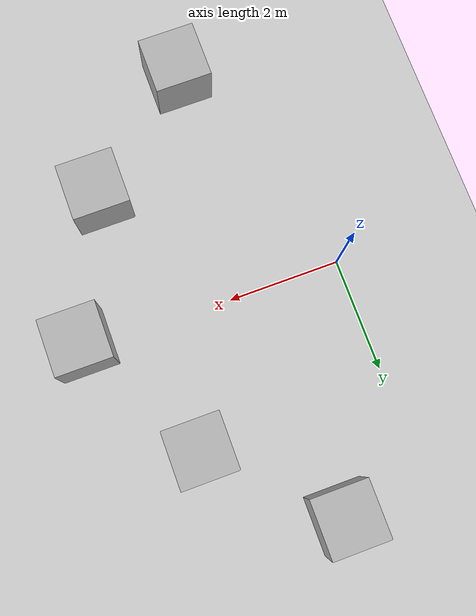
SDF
<sdf version='1.10'>
  <world name='empty'>
    <physics name='1ms' type='ignored'>
      <max_step_size>0.001</max_step_size>
      <real_time_factor>1</real_time_factor>
      <real_time_update_rate>1000</real_time_update_rate>
    </physics>
    <plugin name='gz::sim::systems::Physics' filename='gz-sim-physics-system'/>
    <plugin name='gz::sim::systems::UserCommands' filename='gz-sim-user-commands-system'/>
    <plugin name='gz::sim::systems::SceneBroadcaster' filename='gz-sim-scene-broadcaster-system'/>
    <plugin name='gz::sim::systems::Contact' filename='gz-sim-contact-system'/>
    <plugin name='gz::sim::systems::Sensors' filename='gz-sim-sensors-system'>
      <render_engine>ogre2</render_engine>
    </plugin>
    <gravity>0 0 -9.8000000000000007</gravity>
    <magnetic_field>5.5644999999999998e-06 2.2875799999999999e-05 -4.2388400000000002e-05</magnetic_field>
    <atmosphere type='adiabatic'/>
    <scene>
      <ambient>0.400000006 0.400000006 0.400000006 1</ambient>
      <background>0.699999988 0.699999988 0.699999988 1</background>
      <shadows>true</shadows>
    </scene>
    <model name='ground_plane'>
      <static>true</static>
      <link name='link'>
        <collision name='collision'>
          <geometry>
            <plane>
              <normal>0 0 1</normal>
              <size>100 100</size>
            </plane>
          </geometry>
          <surface>
            <friction>
              <ode/>
            </friction>
            <bounce/>
            <contact/>
          </surface>
        </collision>
        <visual name='visual'>
          <geometry>
            <plane>
              <normal>0 0 1</normal>
              <size>100 100</size>
            </plane>
          </geometry>
          <material>
            <ambient>0.800000012 0.800000012 0.800000012 1</ambient>
            <diffuse>0.800000012 0.800000012 0.800000012 1</diffuse>
            <specular>0.800000012 0.800000012 0.800000012 1</specular>
          </material>
        </visual>
        <pose>0 0 0 0 0 0</pose>
        <inertial>
          <pose>0 0 0 0 0 0</pose>
          <mass>1</mass>
          <inertia>
            <ixx>1</ixx>
            <ixy>0</ixy>
            <ixz>0</ixz>
            <iyy>1</iyy>
            <iyz>0</iyz>
            <izz>1</izz>
          </inertia>
        </inertial>
        <enable_wind>false</enable_wind>
      </link>
      <pose>0 0 0 0 0 0</pose>
      <self_collide>false</self_collide>
    </model>
    <model name='box'>
      <pose>1.5086128113502912 4.0566940331195891 0.49999999990199806 6.2287739151293738e-22 9.3279666454713669e-22 -3.6315533669320137e-22</pose>
      <link name='box_link'>
        <inertial>
          <inertia>
            <ixx>0.16666</ixx>
            <ixy>0</ixy>
            <ixz>0</ixz>
            <iyy>0.16666</iyy>
            <iyz>0</iyz>
            <izz>0.16666</izz>
          </inertia>
          <mass>1</mass>
          <pose>0 0 0 0 0 0</pose>
        </inertial>
        <collision name='box_collision'>
          <geometry>
            <box>
              <size>1 1 1</size>
            </box>
          </geometry>
          <surface>
            <friction>
              <ode/>
            </friction>
            <bounce/>
            <contact/>
          </surface>
        </collision>
        <visual name='box_visual'>
          <geometry>
            <box>
              <size>1 1 1</size>
            </box>
          </geometry>
          <material>
            <ambient>0.300000012 0.300000012 0.300000012 1</ambient>
            <diffuse>0.699999988 0.699999988 0.699999988 1</diffuse>
            <specular>1 1 1 1</specular>
          </material>
        </visual>
        <pose>0 0 0 0 0 0</pose>
        <enable_wind>false</enable_wind>
      </link>
      <static>false</static>
      <self_collide>false</self_collide>
    </model>
    <model name='box_0'>
      <pose>3.3539893988068776 2.2703846662626366 0.49999999990199806 6.2287739151293738e-22 9.3279666454713669e-22 -3.6315533669320137e-22</pose>
      <link name='box_link'>
        <inertial>
          <inertia>
            <ixx>0.16666</ixx>
            <ixy>0</ixy>
            <ixz>0</ixz>
            <iyy>0.16666</iyy>
            <iyz>0</iyz>
            <izz>0.16666</izz>
          </inertia>
          <mass>1</mass>
          <pose>0 0 0 0 0 0</pose>
        </inertial>
        <collision name='box_collision'>
          <geometry>
            <box>
              <size>1 1 1</size>
            </box>
          </geometry>
          <surface>
            <friction>
              <ode/>
            </friction>
            <bounce/>
            <contact/>
          </surface>
        </collision>
        <visual name='box_visual'>
          <geometry>
            <box>
              <size>1 1 1</size>
            </box>
          </geometry>
          <material>
            <ambient>0.300000012 0.300000012 0.300000012 1</ambient>
            <diffuse>0.699999988 0.699999988 0.699999988 1</diffuse>
            <specular>1 1 1 1</specular>
          </material>
        </visual>
        <pose>0 0 0 0 0 0</pose>
        <enable_wind>false</enable_wind>
      </link>
      <static>false</static>
      <self_collide>false</self_collide>
    </model>
    <model name='box_1'>
      <pose>4.6621005700843607 -0.10535839731649875 0.49999999990199806 6.2287739151293738e-22 9.3279666454713669e-22 -3.6315533669320137e-22</pose>
      <link name='box_link'>
        <inertial>
          <inertia>
            <ixx>0.16666</ixx>
            <ixy>0</ixy>
            <ixz>0</ixz>
            <iyy>0.16666</iyy>
            <iyz>0</iyz>
            <izz>0.16666</izz>
          </inertia>
          <mass>1</mass>
          <pose>0 0 0 0 0 0</pose>
        </inertial>
        <collision name='box_collision'>
          <geometry>
            <box>
              <size>1 1 1</size>
            </box>
          </geometry>
          <surface>
            <friction>
              <ode/>
            </friction>
            <bounce/>
            <contact/>
          </surface>
        </collision>
        <visual name='box_visual'>
          <geometry>
            <box>
              <size>1 1 1</size>
            </box>
          </geometry>
          <material>
            <ambient>0.300000012 0.300000012 0.300000012 1</ambient>
            <diffuse>0.699999988 0.699999988 0.699999988 1</diffuse>
            <specular>1 1 1 1</specular>
          </material>
        </visual>
        <pose>0 0 0 0 0 0</pose>
        <enable_wind>false</enable_wind>
      </link>
      <static>false</static>
      <self_collide>false</self_collide>
    </model>
    <model name='box_2'>
      <pose>3.5675221744052319 -2.5029912473739002 0.49999999990199806 6.2287739151293738e-22 9.3279666454713669e-22 -3.6315533669320137e-22</pose>
      <link name='box_link'>
        <inertial>
          <inertia>
            <ixx>0.16666</ixx>
            <ixy>0</ixy>
            <ixz>0</ixz>
            <iyy>0.16666</iyy>
            <iyz>0</iyz>
            <izz>0.16666</izz>
          </inertia>
          <mass>1</mass>
          <pose>0 0 0 0 0 0</pose>
        </inertial>
        <collision name='box_collision'>
          <geometry>
            <box>
              <size>1 1 1</size>
            </box>
          </geometry>
          <surface>
            <friction>
              <ode/>
            </friction>
            <bounce/>
            <contact/>
          </surface>
        </collision>
        <visual name='box_visual'>
          <geometry>
            <box>
              <size>1 1 1</size>
            </box>
          </geometry>
          <material>
            <ambient>0.300000012 0.300000012 0.300000012 1</ambient>
            <diffuse>0.699999988 0.699999988 0.699999988 1</diffuse>
            <specular>1 1 1 1</specular>
          </material>
        </visual>
        <pose>0 0 0 0 0 0</pose>
        <enable_wind>false</enable_wind>
      </link>
      <static>false</static>
      <self_collide>false</self_collide>
    </model>
    <model name='box_3'>
      <pose>1.5086127757813106 -4.1872016802468695 0.49999999990199806 6.2287739151293738e-22 9.3279666454713669e-22 -3.6315533669320137e-22</pose>
      <link name='box_link'>
        <inertial>
          <inertia>
            <ixx>0.16666</ixx>
            <ixy>0</ixy>
            <ixz>0</ixz>
            <iyy>0.16666</iyy>
            <iyz>0</iyz>
            <izz>0.16666</izz>
          </inertia>
          <mass>1</mass>
          <pose>0 0 0 0 0 0</pose>
        </inertial>
        <collision name='box_collision'>
          <geometry>
            <box>
              <size>1 1 1</size>
            </box>
          </geometry>
          <surface>
            <friction>
              <ode/>
            </friction>
            <bounce/>
            <contact/>
          </surface>
        </collision>
        <visual name='box_visual'>
          <geometry>
            <box>
              <size>1 1 1</size>
            </box>
          </geometry>
          <material>
            <ambient>0.300000012 0.300000012 0.300000012 1</ambient>
            <diffuse>0.699999988 0.699999988 0.699999988 1</diffuse>
            <specular>1 1 1 1</specular>
          </material>
        </visual>
        <pose>0 0 0 0 0 0</pose>
        <enable_wind>false</enable_wind>
      </link>
      <static>false</static>
      <self_collide>false</self_collide>
    </model>
    <light name='sun' type='directional'>
      <pose>0 0 10 0 0 0</pose>
      <cast_shadows>true</cast_shadows>
      <intensity>1</intensity>
      <direction>-0.5 0.10000000000000001 -0.90000000000000002</direction>
      <diffuse>0.800000012 0.800000012 0.800000012 1</diffuse>
      <specular>0.200000003 0.200000003 0.200000003 1</specular>
      <attenuation>
        <range>1000</range>
        <linear>0.01</linear>
        <constant>0.90000000000000002</constant>
        <quadratic>0.001</quadratic>
      </attenuation>
      <spot>
        <inner_angle>0</inner_angle>
        <outer_angle>0</outer_angle>
        <falloff>0</falloff>
      </spot>
    </light>
  </world>
</sdf>
